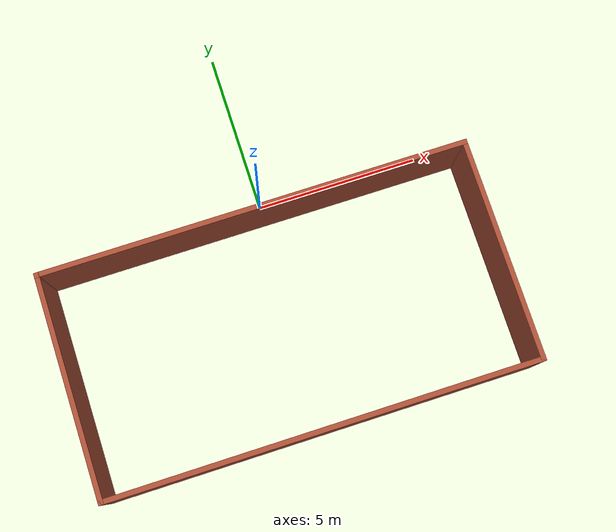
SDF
<?xml version='1.0'?>
<sdf version='1.7'>
  <model name='Untitled'>
    <pose>-0.305432 -3.59753 0 0 -0 0</pose>
    <link name='Wall_2'>
      <collision name='Wall_2_Collision'>
        <geometry>
          <box>
            <size>6.75 0.15 2.5</size>
          </box>
        </geometry>
        <pose>0 0 1.25 0 -0 0</pose>
      </collision>
      <visual name='Wall_2_Visual'>
        <pose>0 0 1.25 0 -0 0</pose>
        <geometry>
          <box>
            <size>6.75 0.15 2.5</size>
          </box>
        </geometry>
        <material>
          <script>
            <uri>file://media/materials/scripts/gazebo.material</uri>
            <name>Gazebo/Bricks</name>
          </script>
          <ambient>1 1 1 1</ambient>
        </material>
        <meta>
          <layer>0</layer>
        </meta>
      </visual>
      <pose>-6.425 -0.222534 0 0 -0 -1.5708</pose>
    </link>
    <link name='Wall_3'>
      <collision name='Wall_3_Collision'>
        <geometry>
          <box>
            <size>13 0.15 2.5</size>
          </box>
        </geometry>
        <pose>0 0 1.25 0 -0 0</pose>
      </collision>
      <visual name='Wall_3_Visual'>
        <pose>0 0 1.25 0 -0 0</pose>
        <geometry>
          <box>
            <size>13 0.15 2.5</size>
          </box>
        </geometry>
        <material>
          <script>
            <uri>file://media/materials/scripts/gazebo.material</uri>
            <name>Gazebo/Bricks</name>
          </script>
          <ambient>1 1 1 1</ambient>
        </material>
        <meta>
          <layer>0</layer>
        </meta>
      </visual>
      <pose>0 -3.52253 0 0 -0 0</pose>
    </link>
    <link name='Wall_4'>
      <collision name='Wall_4_Collision'>
        <geometry>
          <box>
            <size>6.75 0.15 2.5</size>
          </box>
        </geometry>
        <pose>0 0 1.25 0 -0 0</pose>
      </collision>
      <visual name='Wall_4_Visual'>
        <pose>0 0 1.25 0 -0 0</pose>
        <geometry>
          <box>
            <size>6.75 0.15 2.5</size>
          </box>
        </geometry>
        <material>
          <script>
            <uri>file://media/materials/scripts/gazebo.material</uri>
            <name>Gazebo/Bricks</name>
          </script>
          <ambient>1 1 1 1</ambient>
        </material>
        <meta>
          <layer>0</layer>
        </meta>
      </visual>
      <pose>6.425 -0.222534 0 0 -0 1.5708</pose>
    </link>
    <link name='Wall_5'>
      <collision name='Wall_5_Collision'>
        <geometry>
          <box>
            <size>13 0.15 2.5</size>
          </box>
        </geometry>
        <pose>0 0 1.25 0 -0 0</pose>
      </collision>
      <visual name='Wall_5_Visual'>
        <pose>0 0 1.25 0 -0 0</pose>
        <geometry>
          <box>
            <size>13 0.15 2.5</size>
          </box>
        </geometry>
        <material>
          <script>
            <uri>file://media/materials/scripts/gazebo.material</uri>
            <name>Gazebo/Bricks</name>
          </script>
          <ambient>1 1 1 1</ambient>
        </material>
        <meta>
          <layer>0</layer>
        </meta>
      </visual>
      <pose>0 3.07747 0 0 -0 3.14159</pose>
    </link>
    <static>1</static>
  </model>
</sdf>
